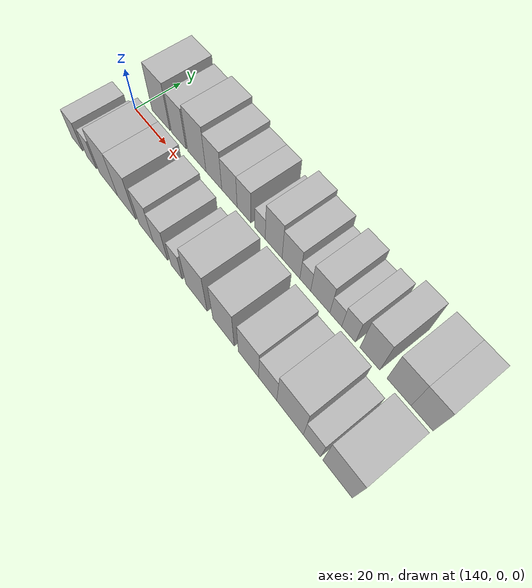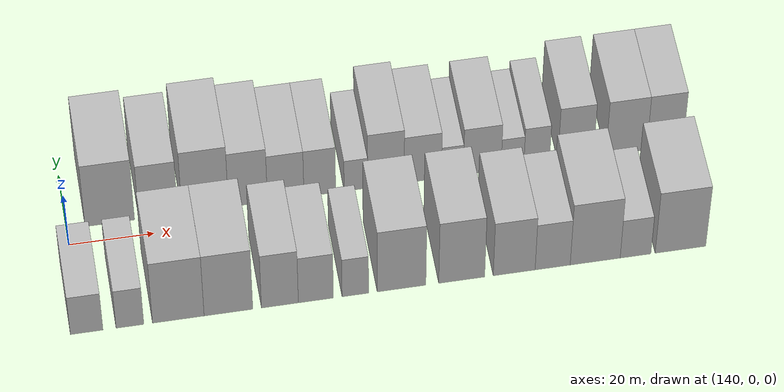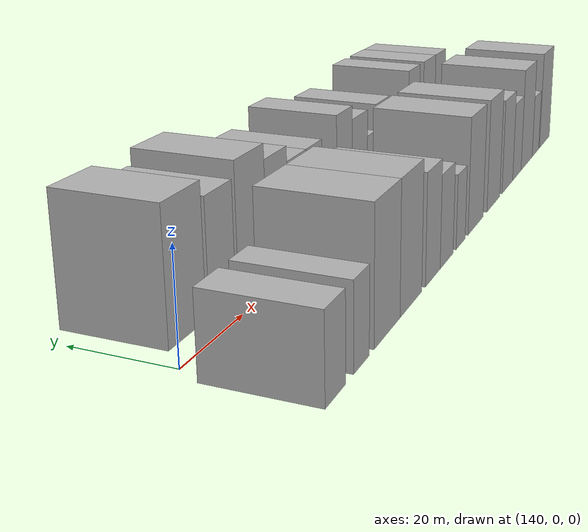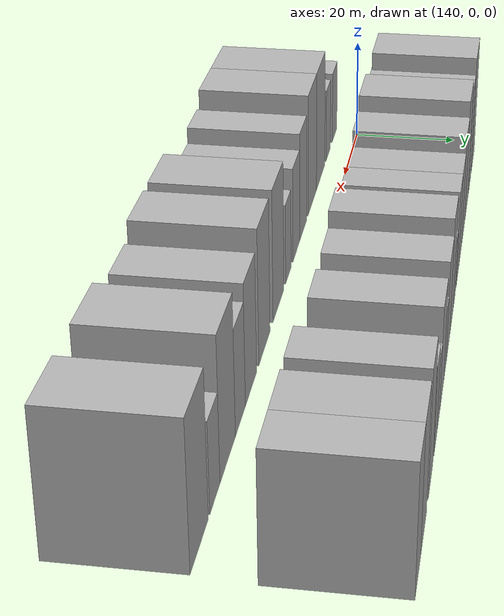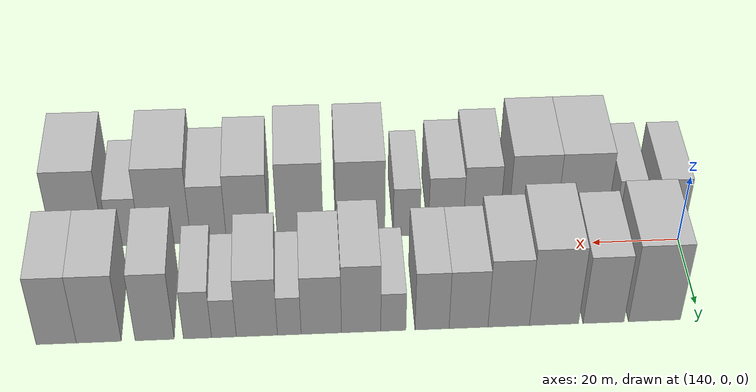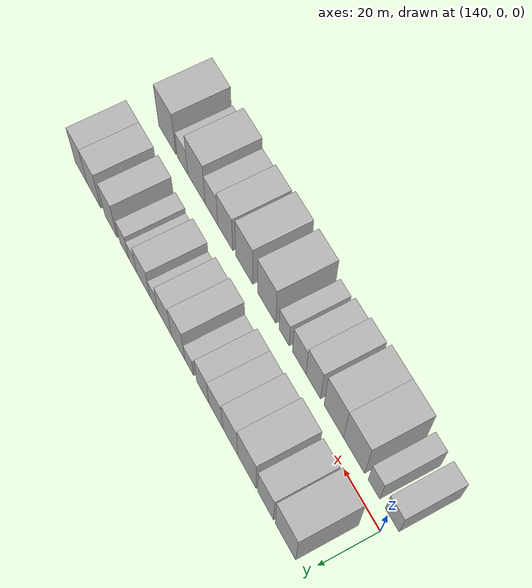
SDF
<sdf version="1.6">
 <world name="default">
  <model name="building_16">
   <static>1</static>
   <pose>150.1313 14.5000 0 0.000000 0.000000 1.570796</pose>
   <link name="link">
    <pose>0 0 12.00 0 0 0</pose>
    <collision name="collision"><geometry><box><size>20.0000 11.5796 24.0000</size></box></geometry></collision>
    <visual name="visual">
     <cast_shadows>0</cast_shadows>
     <geometry><box><size>20.0000 11.5796 24.0000</size></box></geometry>
     <material>
      <script>
       <uri>model://HANNAS_wall/materials/scripts</uri>
       <uri>model://HANNAS_wall/materials/textures</uri>
       <name>vrc/HANNAS_wall</name>
      </script>
     </material>
    </visual>
   </link>
  </model>
  <model name="building_17">
   <static>1</static>
   <pose>161.4761 14.5000 0 0.000000 0.000000 1.570796</pose>
   <link name="link">
    <pose>0 0 10.50 0 0 0</pose>
    <collision name="collision"><geometry><box><size>20.0000 9.1101 21.0000</size></box></geometry></collision>
    <visual name="visual">
     <cast_shadows>0</cast_shadows>
     <geometry><box><size>20.0000 9.1101 21.0000</size></box></geometry>
     <material>
      <script>
       <uri>model://HANNAS_wall/materials/scripts</uri>
       <uri>model://HANNAS_wall/materials/textures</uri>
       <name>vrc/HANNAS_wall</name>
      </script>
     </material>
    </visual>
   </link>
  </model>
  <model name="building_18">
   <static>1</static>
   <pose>172.4887 14.5000 0 0.000000 0.000000 1.570796</pose>
   <link name="link">
    <pose>0 0 12.00 0 0 0</pose>
    <collision name="collision"><geometry><box><size>20.0000 10.9151 24.0000</size></box></geometry></collision>
    <visual name="visual">
     <cast_shadows>0</cast_shadows>
     <geometry><box><size>20.0000 10.9151 24.0000</size></box></geometry>
     <material>
      <script>
       <uri>model://HANNAS_wall/materials/scripts</uri>
       <uri>model://HANNAS_wall/materials/textures</uri>
       <name>vrc/HANNAS_wall</name>
      </script>
     </material>
    </visual>
   </link>
  </model>
  <model name="building_19">
   <static>1</static>
   <pose>182.5299 14.5000 0 0.000000 0.000000 1.570796</pose>
   <link name="link">
    <pose>0 0 10.50 0 0 0</pose>
    <collision name="collision"><geometry><box><size>20.0000 9.1673 21.0000</size></box></geometry></collision>
    <visual name="visual">
     <cast_shadows>0</cast_shadows>
     <geometry><box><size>20.0000 9.1673 21.0000</size></box></geometry>
     <material>
      <script>
       <uri>model://HANNAS_wall/materials/scripts</uri>
       <uri>model://HANNAS_wall/materials/textures</uri>
       <name>vrc/HANNAS_wall</name>
      </script>
     </material>
    </visual>
   </link>
  </model>
  <model name="building_20">
   <static>1</static>
   <pose>191.4184 14.5000 0 0.000000 0.000000 1.570796</pose>
   <link name="link">
    <pose>0 0 9.00 0 0 0</pose>
    <collision name="collision"><geometry><box><size>20.0000 8.6097 18.0000</size></box></geometry></collision>
    <visual name="visual">
     <cast_shadows>0</cast_shadows>
     <geometry><box><size>20.0000 8.6097 18.0000</size></box></geometry>
     <material>
      <script>
       <uri>model://HANNAS_wall/materials/scripts</uri>
       <uri>model://HANNAS_wall/materials/textures</uri>
       <name>vrc/HANNAS_wall</name>
      </script>
     </material>
    </visual>
   </link>
  </model>
  <model name="building_21">
   <static>1</static>
   <pose>199.4743 14.5000 0 0.000000 0.000000 1.570796</pose>
   <link name="link">
    <pose>0 0 9.00 0 0 0</pose>
    <collision name="collision"><geometry><box><size>20.0000 7.5022 18.0000</size></box></geometry></collision>
    <visual name="visual">
     <cast_shadows>0</cast_shadows>
     <geometry><box><size>20.0000 7.5022 18.0000</size></box></geometry>
     <material>
      <script>
       <uri>model://HANNAS_wall/materials/scripts</uri>
       <uri>model://HANNAS_wall/materials/textures</uri>
       <name>vrc/HANNAS_wall</name>
      </script>
     </material>
    </visual>
   </link>
  </model>
  <model name="building_22">
   <static>1</static>
   <pose>207.9939 14.5000 0 0.000000 0.000000 1.570796</pose>
   <link name="link">
    <pose>0 0 6.00 0 0 0</pose>
    <collision name="collision"><geometry><box><size>20.0000 5.5370 12.0000</size></box></geometry></collision>
    <visual name="visual">
     <cast_shadows>0</cast_shadows>
     <geometry><box><size>20.0000 5.5370 12.0000</size></box></geometry>
     <material>
      <script>
       <uri>model://HANNAS_wall/materials/scripts</uri>
       <uri>model://HANNAS_wall/materials/textures</uri>
       <name>vrc/HANNAS_wall</name>
      </script>
     </material>
    </visual>
   </link>
  </model>
  <model name="building_23">
   <static>1</static>
   <pose>215.0851 14.5000 0 0.000000 0.000000 1.570796</pose>
   <link name="link">
    <pose>0 0 10.50 0 0 0</pose>
    <collision name="collision"><geometry><box><size>20.0000 8.6453 21.0000</size></box></geometry></collision>
    <visual name="visual">
     <cast_shadows>0</cast_shadows>
     <geometry><box><size>20.0000 8.6453 21.0000</size></box></geometry>
     <material>
      <script>
       <uri>model://HANNAS_wall/materials/scripts</uri>
       <uri>model://HANNAS_wall/materials/textures</uri>
       <name>vrc/HANNAS_wall</name>
      </script>
     </material>
    </visual>
   </link>
  </model>
  <model name="building_24">
   <static>1</static>
   <pose>223.8281 14.5000 0 0.000000 0.000000 1.570796</pose>
   <link name="link">
    <pose>0 0 9.00 0 0 0</pose>
    <collision name="collision"><geometry><box><size>20.0000 8.8406 18.0000</size></box></geometry></collision>
    <visual name="visual">
     <cast_shadows>0</cast_shadows>
     <geometry><box><size>20.0000 8.8406 18.0000</size></box></geometry>
     <material>
      <script>
       <uri>model://HANNAS_wall/materials/scripts</uri>
       <uri>model://HANNAS_wall/materials/textures</uri>
       <name>vrc/HANNAS_wall</name>
      </script>
     </material>
    </visual>
   </link>
  </model>
  <model name="building_25">
   <static>1</static>
   <pose>230.8523 14.5000 0 0.000000 0.000000 1.570796</pose>
   <link name="link">
    <pose>0 0 6.00 0 0 0</pose>
    <collision name="collision"><geometry><box><size>20.0000 5.2079 12.0000</size></box></geometry></collision>
    <visual name="visual">
     <cast_shadows>0</cast_shadows>
     <geometry><box><size>20.0000 5.2079 12.0000</size></box></geometry>
     <material>
      <script>
       <uri>model://HANNAS_wall/materials/scripts</uri>
       <uri>model://HANNAS_wall/materials/textures</uri>
       <name>vrc/HANNAS_wall</name>
      </script>
     </material>
    </visual>
   </link>
  </model>
  <model name="building_26">
   <static>1</static>
   <pose>237.9492 14.5000 0 0.000000 0.000000 1.570796</pose>
   <link name="link">
    <pose>0 0 9.00 0 0 0</pose>
    <collision name="collision"><geometry><box><size>20.0000 8.9858 18.0000</size></box></geometry></collision>
    <visual name="visual">
     <cast_shadows>0</cast_shadows>
     <geometry><box><size>20.0000 8.9858 18.0000</size></box></geometry>
     <material>
      <script>
       <uri>model://HANNAS_wall/materials/scripts</uri>
       <uri>model://HANNAS_wall/materials/textures</uri>
       <name>vrc/HANNAS_wall</name>
      </script>
     </material>
    </visual>
   </link>
  </model>
  <model name="building_27">
   <static>1</static>
   <pose>245.1500 14.5000 0 0.000000 0.000000 1.570796</pose>
   <link name="link">
    <pose>0 0 6.00 0 0 0</pose>
    <collision name="collision"><geometry><box><size>20.0000 5.4158 12.0000</size></box></geometry></collision>
    <visual name="visual">
     <cast_shadows>0</cast_shadows>
     <geometry><box><size>20.0000 5.4158 12.0000</size></box></geometry>
     <material>
      <script>
       <uri>model://HANNAS_wall/materials/scripts</uri>
       <uri>model://HANNAS_wall/materials/textures</uri>
       <name>vrc/HANNAS_wall</name>
      </script>
     </material>
    </visual>
   </link>
  </model>
  <model name="building_28">
   <static>1</static>
   <pose>250.9206 14.5000 0 0.000000 0.000000 1.570796</pose>
   <link name="link">
    <pose>0 0 7.50 0 0 0</pose>
    <collision name="collision"><geometry><box><size>20.0000 6.1256 15.0000</size></box></geometry></collision>
    <visual name="visual">
     <cast_shadows>0</cast_shadows>
     <geometry><box><size>20.0000 6.1256 15.0000</size></box></geometry>
     <material>
      <script>
       <uri>model://HANNAS_wall/materials/scripts</uri>
       <uri>model://HANNAS_wall/materials/textures</uri>
       <name>vrc/HANNAS_wall</name>
      </script>
     </material>
    </visual>
   </link>
  </model>
  <model name="building_29">
   <static>1</static>
   <pose>260.2437 14.5000 0 0.000000 0.000000 1.570796</pose>
   <link name="link">
    <pose>0 0 10.50 0 0 0</pose>
    <collision name="collision"><geometry><box><size>20.0000 8.5206 21.0000</size></box></geometry></collision>
    <visual name="visual">
     <cast_shadows>0</cast_shadows>
     <geometry><box><size>20.0000 8.5206 21.0000</size></box></geometry>
     <material>
      <script>
       <uri>model://HANNAS_wall/materials/scripts</uri>
       <uri>model://HANNAS_wall/materials/textures</uri>
       <name>vrc/HANNAS_wall</name>
      </script>
     </material>
    </visual>
   </link>
  </model>
  <model name="building_30">
   <static>1</static>
   <pose>272.3866 14.5000 0 0.000000 0.000000 1.570796</pose>
   <link name="link">
    <pose>0 0 10.50 0 0 0</pose>
    <collision name="collision"><geometry><box><size>20.0000 9.7652 21.0000</size></box></geometry></collision>
    <visual name="visual">
     <cast_shadows>0</cast_shadows>
     <geometry><box><size>20.0000 9.7652 21.0000</size></box></geometry>
     <material>
      <script>
       <uri>model://HANNAS_wall/materials/scripts</uri>
       <uri>model://HANNAS_wall/materials/textures</uri>
       <name>vrc/HANNAS_wall</name>
      </script>
     </material>
    </visual>
   </link>
  </model>
  <model name="building_31">
   <static>1</static>
   <pose>281.6201 14.5000 0 0.000000 0.000000 1.570796</pose>
   <link name="link">
    <pose>0 0 10.50 0 0 0</pose>
    <collision name="collision"><geometry><box><size>20.0000 8.7017 21.0000</size></box></geometry></collision>
    <visual name="visual">
     <cast_shadows>0</cast_shadows>
     <geometry><box><size>20.0000 8.7017 21.0000</size></box></geometry>
     <material>
      <script>
       <uri>model://HANNAS_wall/materials/scripts</uri>
       <uri>model://HANNAS_wall/materials/textures</uri>
       <name>vrc/HANNAS_wall</name>
      </script>
     </material>
    </visual>
   </link>
  </model>
  <model name="building_44">
   <static>1</static>
   <pose>141.1470 -14.5000 0 0.000000 0.000000 1.570796</pose>
   <link name="link">
    <pose>0 0 7.50 0 0 0</pose>
    <collision name="collision"><geometry><box><size>20.0000 7.4842 15.0000</size></box></geometry></collision>
    <visual name="visual">
     <cast_shadows>0</cast_shadows>
     <geometry><box><size>20.0000 7.4842 15.0000</size></box></geometry>
     <material>
      <script>
       <uri>model://HANNAS_wall/materials/scripts</uri>
       <uri>model://HANNAS_wall/materials/textures</uri>
       <name>vrc/HANNAS_wall</name>
      </script>
     </material>
    </visual>
   </link>
  </model>
  <model name="building_45">
   <static>1</static>
   <pose>151.0759 -14.5000 0 0.000000 0.000000 1.570796</pose>
   <link name="link">
    <pose>0 0 7.50 0 0 0</pose>
    <collision name="collision"><geometry><box><size>20.0000 6.3737 15.0000</size></box></geometry></collision>
    <visual name="visual">
     <cast_shadows>0</cast_shadows>
     <geometry><box><size>20.0000 6.3737 15.0000</size></box></geometry>
     <material>
      <script>
       <uri>model://HANNAS_wall/materials/scripts</uri>
       <uri>model://HANNAS_wall/materials/textures</uri>
       <name>vrc/HANNAS_wall</name>
      </script>
     </material>
    </visual>
   </link>
  </model>
  <model name="building_46">
   <static>1</static>
   <pose>162.2047 -14.5000 0 0.000000 0.000000 1.570796</pose>
   <link name="link">
    <pose>0 0 12.00 0 0 0</pose>
    <collision name="collision"><geometry><box><size>20.0000 11.8839 24.0000</size></box></geometry></collision>
    <visual name="visual">
     <cast_shadows>0</cast_shadows>
     <geometry><box><size>20.0000 11.8839 24.0000</size></box></geometry>
     <material>
      <script>
       <uri>model://HANNAS_wall/materials/scripts</uri>
       <uri>model://HANNAS_wall/materials/textures</uri>
       <name>vrc/HANNAS_wall</name>
      </script>
     </material>
    </visual>
   </link>
  </model>
  <model name="building_47">
   <static>1</static>
   <pose>173.7663 -14.5000 0 0.000000 0.000000 1.570796</pose>
   <link name="link">
    <pose>0 0 12.00 0 0 0</pose>
    <collision name="collision"><geometry><box><size>20.0000 11.2392 24.0000</size></box></geometry></collision>
    <visual name="visual">
     <cast_shadows>0</cast_shadows>
     <geometry><box><size>20.0000 11.2392 24.0000</size></box></geometry>
     <material>
      <script>
       <uri>model://HANNAS_wall/materials/scripts</uri>
       <uri>model://HANNAS_wall/materials/textures</uri>
       <name>vrc/HANNAS_wall</name>
      </script>
     </material>
    </visual>
   </link>
  </model>
  <model name="building_48">
   <static>1</static>
   <pose>185.6516 -14.5000 0 0.000000 0.000000 1.570796</pose>
   <link name="link">
    <pose>0 0 10.50 0 0 0</pose>
    <collision name="collision"><geometry><box><size>20.0000 8.5313 21.0000</size></box></geometry></collision>
    <visual name="visual">
     <cast_shadows>0</cast_shadows>
     <geometry><box><size>20.0000 8.5313 21.0000</size></box></geometry>
     <material>
      <script>
       <uri>model://HANNAS_wall/materials/scripts</uri>
       <uri>model://HANNAS_wall/materials/textures</uri>
       <name>vrc/HANNAS_wall</name>
      </script>
     </material>
    </visual>
   </link>
  </model>
  <model name="building_49">
   <static>1</static>
   <pose>193.9821 -14.5000 0 0.000000 0.000000 1.570796</pose>
   <link name="link">
    <pose>0 0 9.00 0 0 0</pose>
    <collision name="collision"><geometry><box><size>20.0000 8.1296 18.0000</size></box></geometry></collision>
    <visual name="visual">
     <cast_shadows>0</cast_shadows>
     <geometry><box><size>20.0000 8.1296 18.0000</size></box></geometry>
     <material>
      <script>
       <uri>model://HANNAS_wall/materials/scripts</uri>
       <uri>model://HANNAS_wall/materials/textures</uri>
       <name>vrc/HANNAS_wall</name>
      </script>
     </material>
    </visual>
   </link>
  </model>
  <model name="building_50">
   <static>1</static>
   <pose>203.1256 -14.5000 0 0.000000 0.000000 1.570796</pose>
   <link name="link">
    <pose>0 0 7.50 0 0 0</pose>
    <collision name="collision"><geometry><box><size>20.0000 6.1575 15.0000</size></box></geometry></collision>
    <visual name="visual">
     <cast_shadows>0</cast_shadows>
     <geometry><box><size>20.0000 6.1575 15.0000</size></box></geometry>
     <material>
      <script>
       <uri>model://HANNAS_wall/materials/scripts</uri>
       <uri>model://HANNAS_wall/materials/textures</uri>
       <name>vrc/HANNAS_wall</name>
      </script>
     </material>
    </visual>
   </link>
  </model>
  <model name="building_51">
   <static>1</static>
   <pose>213.8698 -14.5000 0 0.000000 0.000000 1.570796</pose>
   <link name="link">
    <pose>0 0 12.00 0 0 0</pose>
    <collision name="collision"><geometry><box><size>20.0000 11.3309 24.0000</size></box></geometry></collision>
    <visual name="visual">
     <cast_shadows>0</cast_shadows>
     <geometry><box><size>20.0000 11.3309 24.0000</size></box></geometry>
     <material>
      <script>
       <uri>model://HANNAS_wall/materials/scripts</uri>
       <uri>model://HANNAS_wall/materials/textures</uri>
       <name>vrc/HANNAS_wall</name>
      </script>
     </material>
    </visual>
   </link>
  </model>
  <model name="building_52">
   <static>1</static>
   <pose>227.9006 -14.5000 0 0.000000 0.000000 1.570796</pose>
   <link name="link">
    <pose>0 0 12.00 0 0 0</pose>
    <collision name="collision"><geometry><box><size>20.0000 10.7307 24.0000</size></box></geometry></collision>
    <visual name="visual">
     <cast_shadows>0</cast_shadows>
     <geometry><box><size>20.0000 10.7307 24.0000</size></box></geometry>
     <material>
      <script>
       <uri>model://HANNAS_wall/materials/scripts</uri>
       <uri>model://HANNAS_wall/materials/textures</uri>
       <name>vrc/HANNAS_wall</name>
      </script>
     </material>
    </visual>
   </link>
  </model>
  <model name="building_53">
   <static>1</static>
   <pose>240.1626 -14.5000 0 0.000000 0.000000 1.570796</pose>
   <link name="link">
    <pose>0 0 10.50 0 0 0</pose>
    <collision name="collision"><geometry><box><size>20.0000 9.7933 21.0000</size></box></geometry></collision>
    <visual name="visual">
     <cast_shadows>0</cast_shadows>
     <geometry><box><size>20.0000 9.7933 21.0000</size></box></geometry>
     <material>
      <script>
       <uri>model://HANNAS_wall/materials/scripts</uri>
       <uri>model://HANNAS_wall/materials/textures</uri>
       <name>vrc/HANNAS_wall</name>
      </script>
     </material>
    </visual>
   </link>
  </model>
  <model name="building_54">
   <static>1</static>
   <pose>249.1737 -14.5000 0 0.000000 0.000000 1.570796</pose>
   <link name="link">
    <pose>0 0 9.00 0 0 0</pose>
    <collision name="collision"><geometry><box><size>20.0000 8.2289 18.0000</size></box></geometry></collision>
    <visual name="visual">
     <cast_shadows>0</cast_shadows>
     <geometry><box><size>20.0000 8.2289 18.0000</size></box></geometry>
     <material>
      <script>
       <uri>model://HANNAS_wall/materials/scripts</uri>
       <uri>model://HANNAS_wall/materials/textures</uri>
       <name>vrc/HANNAS_wall</name>
      </script>
     </material>
    </visual>
   </link>
  </model>
  <model name="building_55">
   <static>1</static>
   <pose>259.1567 -14.5000 0 0.000000 0.000000 1.570796</pose>
   <link name="link">
    <pose>0 0 12.00 0 0 0</pose>
    <collision name="collision"><geometry><box><size>20.0000 11.7370 24.0000</size></box></geometry></collision>
    <visual name="visual">
     <cast_shadows>0</cast_shadows>
     <geometry><box><size>20.0000 11.7370 24.0000</size></box></geometry>
     <material>
      <script>
       <uri>model://HANNAS_wall/materials/scripts</uri>
       <uri>model://HANNAS_wall/materials/textures</uri>
       <name>vrc/HANNAS_wall</name>
      </script>
     </material>
    </visual>
   </link>
  </model>
  <model name="building_56">
   <static>1</static>
   <pose>268.6446 -14.5000 0 0.000000 0.000000 1.570796</pose>
   <link name="link">
    <pose>0 0 7.50 0 0 0</pose>
    <collision name="collision"><geometry><box><size>20.0000 7.2388 15.0000</size></box></geometry></collision>
    <visual name="visual">
     <cast_shadows>0</cast_shadows>
     <geometry><box><size>20.0000 7.2388 15.0000</size></box></geometry>
     <material>
      <script>
       <uri>model://HANNAS_wall/materials/scripts</uri>
       <uri>model://HANNAS_wall/materials/textures</uri>
       <name>vrc/HANNAS_wall</name>
      </script>
     </material>
    </visual>
   </link>
  </model>
  <model name="building_57">
   <static>1</static>
   <pose>279.2247 -14.5000 0 0.000000 0.000000 1.570796</pose>
   <link name="link">
    <pose>0 0 12.00 0 0 0</pose>
    <collision name="collision"><geometry><box><size>20.0000 11.9214 24.0000</size></box></geometry></collision>
    <visual name="visual">
     <cast_shadows>0</cast_shadows>
     <geometry><box><size>20.0000 11.9214 24.0000</size></box></geometry>
     <material>
      <script>
       <uri>model://HANNAS_wall/materials/scripts</uri>
       <uri>model://HANNAS_wall/materials/textures</uri>
       <name>vrc/HANNAS_wall</name>
      </script>
     </material>
    </visual>
   </link>
  </model>
 </world>
</sdf>
